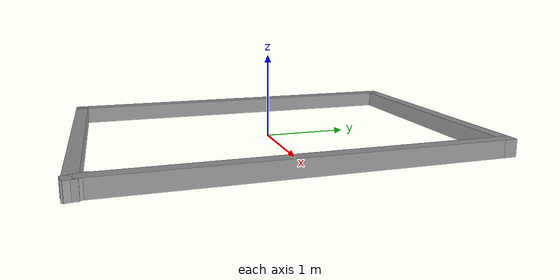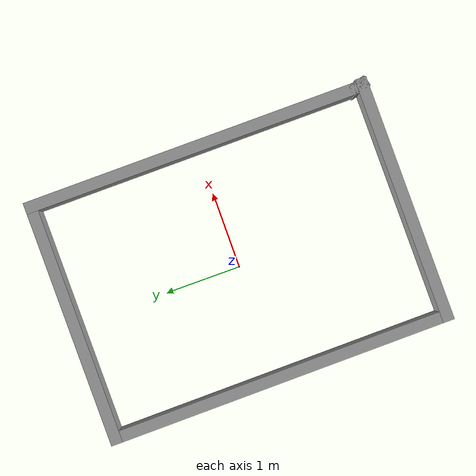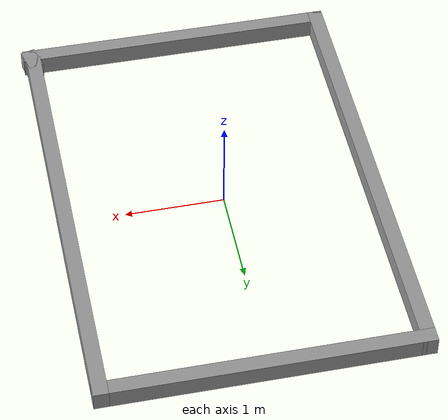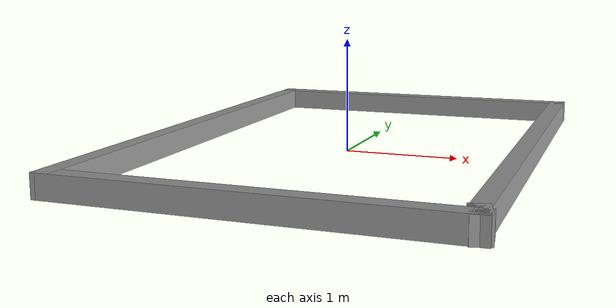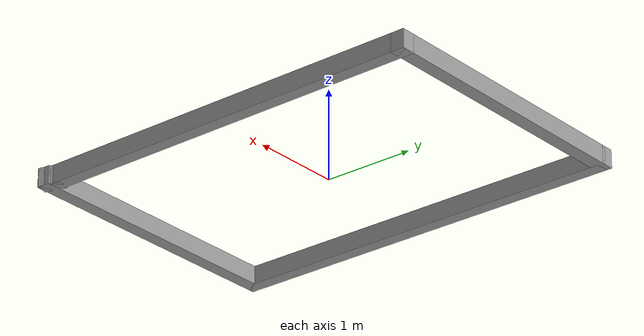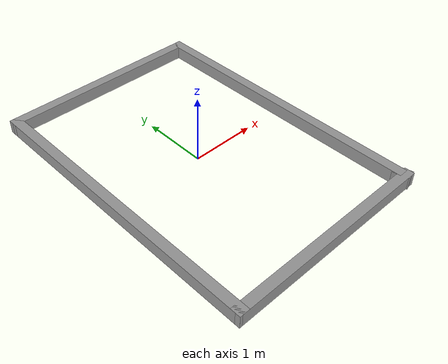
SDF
<?xml version='1.0'?>
<sdf version='1.7'>
  <model name='sample_arena'>
    <pose>0.078185 -0.022711 0 0 -0 0</pose>
    <link name='Wall_1'>
      <collision name='Wall_1_Collision'>
        <geometry>
          <box>
            <size>3.25 0.15 0.2</size>
          </box>
        </geometry>
        <pose>0 0 0.1 0 -0 0</pose>
      </collision>
      <visual name='Wall_1_Visual'>
        <pose>0 0 0.1 0 -0 0</pose>
        <geometry>
          <box>
            <size>3.25 0.15 0.2</size>
          </box>
        </geometry>
        <material>
          <script>
            <uri>file://media/materials/scripts/gazebo.material</uri>
            <name>Gazebo/Grey</name>
          </script>
          <ambient>1 1 1 1</ambient>
        </material>
        <meta>
          <layer>0</layer>
        </meta>
      </visual>
      <pose>0.004815 -2.21529 0 0 -0 0</pose>
    </link>
    <link name='Wall_2'>
      <collision name='Wall_2_Collision'>
        <geometry>
          <box>
            <size>0.25 0.15 0.2</size>
          </box>
        </geometry>
        <pose>0 0 0.1 0 -0 0</pose>
      </collision>
      <visual name='Wall_2_Visual'>
        <pose>0 0 0.1 0 -0 0</pose>
        <geometry>
          <box>
            <size>0.25 0.15 0.2</size>
          </box>
        </geometry>
        <material>
          <script>
            <uri>file://media/materials/scripts/gazebo.material</uri>
            <name>Gazebo/Grey</name>
          </script>
          <ambient>1 1 1 1</ambient>
        </material>
        <meta>
          <layer>0</layer>
        </meta>
      </visual>
      <pose>1.54181 -2.16679 0 0 -0 1.83268</pose>
    </link>
    <link name='Wall_3'>
      <collision name='Wall_3_Collision'>
        <geometry>
          <box>
            <size>4.5 0.15 0.2</size>
          </box>
        </geometry>
        <pose>0 0 0.1 0 -0 0</pose>
      </collision>
      <visual name='Wall_3_Visual'>
        <pose>0 0 0.1 0 -0 0</pose>
        <geometry>
          <box>
            <size>4.5 0.15 0.2</size>
          </box>
        </geometry>
        <material>
          <script>
            <uri>file://media/materials/scripts/gazebo.material</uri>
            <name>Gazebo/Grey</name>
          </script>
          <ambient>1 1 1 1</ambient>
        </material>
        <meta>
          <layer>0</layer>
        </meta>
      </visual>
      <pose>1.52882 0.056711 0 0 -0 1.5708</pose>
    </link>
    <link name='Wall_4'>
      <collision name='Wall_4_Collision'>
        <geometry>
          <box>
            <size>3.25 0.15 0.2</size>
          </box>
        </geometry>
        <pose>0 0 0.1 0 -0 0</pose>
      </collision>
      <visual name='Wall_4_Visual'>
        <pose>0 0 0.1 0 -0 0</pose>
        <geometry>
          <box>
            <size>3.25 0.15 0.2</size>
          </box>
        </geometry>
        <material>
          <script>
            <uri>file://media/materials/scripts/gazebo.material</uri>
            <name>Gazebo/Grey</name>
          </script>
          <ambient>1 1 1 1</ambient>
        </material>
        <meta>
          <layer>0</layer>
        </meta>
      </visual>
      <pose>-0.021185 2.23171 0 0 -0 3.14159</pose>
    </link>
    <link name='Wall_5'>
      <collision name='Wall_5_Collision'>
        <geometry>
          <box>
            <size>4.59667 0.15 0.2</size>
          </box>
        </geometry>
        <pose>0 0 0.1 0 -0 0</pose>
      </collision>
      <visual name='Wall_5_Visual'>
        <pose>0 0 0.1 0 -0 0</pose>
        <geometry>
          <box>
            <size>4.59667 0.15 0.2</size>
          </box>
        </geometry>
        <material>
          <script>
            <uri>file://media/materials/scripts/gazebo.material</uri>
            <name>Gazebo/Grey</name>
          </script>
          <ambient>1 1 1 1</ambient>
        </material>
        <meta>
          <layer>0</layer>
        </meta>
      </visual>
      <pose>-1.55818 0.008211 0 0 -0 -1.56495</pose>
    </link>
    <static>1</static>
  </model>
</sdf>
